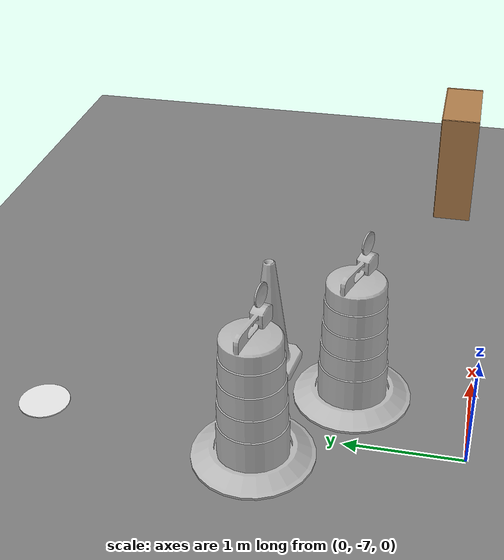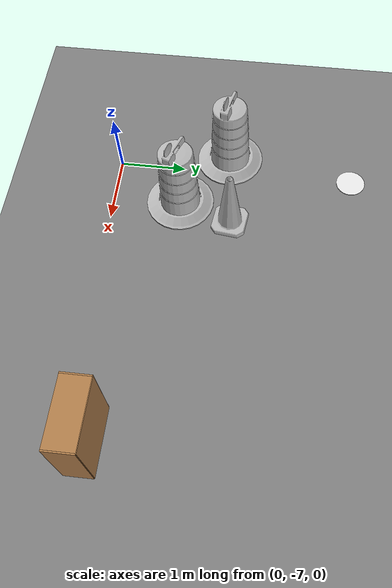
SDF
<sdf version="1.7">
 <world name="default">
  <model name="Construction Barrel">
   <link name="link">
    <inertial>
     <pose>0 0 0.4 0 -0 0</pose>
     <mass>500</mass>
     <inertia><ixx>51.2096</ixx><iyy>51.2096</iyy><izz>25</izz><ixy>0</ixy><ixz>0</ixz><iyz>0</iyz></inertia>
    </inertial>
    <collision name="collision">
     <pose>0 0 0.32 0 0 0</pose>
     <geometry><cylinder><radius>0.16</radius><length>0.64</length></cylinder></geometry>
    </collision>
    <visual name="visual">
     <geometry><mesh><uri>model://construction_barrel/meshes/construction_barrel.dae</uri></mesh></geometry>
    </visual>
   </link>
   <pose>-0.274787 -5.3139 0.00999 1e-06 -0 -0.237848</pose>
  </model>
  <model name="Construction Barrel_clone">
   <link name="link">
    <inertial>
     <pose>0 0 0.4 0 -0 0</pose>
     <mass>500</mass>
     <inertia><ixx>51.2096</ixx><iyy>51.2096</iyy><izz>25</izz><ixy>0</ixy><ixz>0</ixz><iyz>0</iyz></inertia>
    </inertial>
    <collision name="collision">
     <pose>0 0 0.32 0 0 0</pose>
     <geometry><cylinder><radius>0.16</radius><length>0.64</length></cylinder></geometry>
    </collision>
    <visual name="visual">
     <geometry><mesh><uri>model://construction_barrel/meshes/construction_barrel.dae</uri></mesh></geometry>
    </visual>
   </link>
   <pose>0.623823 -5.9827 0.009999 3e-06 -8e-06 -0.35048</pose>
  </model>
  <model name="bookshelf">
   <static>1</static>
   <link name="link">
    <inertial><mass>1</mass></inertial>
    <collision name="back">
     <pose>0 0.005 0.6 0 -0 0</pose>
     <geometry><box><size>0.9 0.01 1.2</size></box></geometry>
    </collision>
    <visual name="visual1">
     <pose>0 0.005 0.6 0 -0 0</pose>
     <geometry><box><size>0.9 0.01 1.2</size></box></geometry>
     <material>
      <script><uri>file://media/materials/scripts/gazebo.material</uri><name>Gazebo/Wood</name></script>
      <ambient>0.55 0.34 0.16 1</ambient>
      <diffuse>0.55 0.34 0.16 1</diffuse>
      <specular>0.08 0.08 0.08 1</specular>
      <emissive>0 0 0 1</emissive>
     </material>
    </visual>
    <collision name="left_side">
     <pose>0.45 -0.195 0.6 0 -0 0</pose>
     <geometry><box><size>0.02 0.4 1.2</size></box></geometry>
    </collision>
    <visual name="visual2">
     <pose>0.45 -0.195 0.6 0 -0 0</pose>
     <geometry><box><size>0.02 0.4 1.2</size></box></geometry>
     <material>
      <script><uri>file://media/materials/scripts/gazebo.material</uri><name>Gazebo/Wood</name></script>
      <ambient>0.55 0.34 0.16 1</ambient>
      <diffuse>0.55 0.34 0.16 1</diffuse>
      <specular>0.08 0.08 0.08 1</specular>
      <emissive>0 0 0 1</emissive>
     </material>
    </visual>
    <collision name="right_side">
     <pose>-0.45 -0.195 0.6 0 -0 0</pose>
     <geometry><box><size>0.02 0.4 1.2</size></box></geometry>
    </collision>
    <visual name="visual3">
     <pose>-0.45 -0.195 0.6 0 -0 0</pose>
     <geometry><box><size>0.02 0.4 1.2</size></box></geometry>
     <material>
      <script><uri>file://media/materials/scripts/gazebo.material</uri><name>Gazebo/Wood</name></script>
      <ambient>0.55 0.34 0.16 1</ambient>
      <diffuse>0.55 0.34 0.16 1</diffuse>
      <specular>0.08 0.08 0.08 1</specular>
      <emissive>0 0 0 1</emissive>
     </material>
    </visual>
    <collision name="bottom">
     <pose>0 -0.195 0.03 0 -0 0</pose>
     <geometry><box><size>0.88 0.4 0.06</size></box></geometry>
    </collision>
    <visual name="visual4">
     <pose>0 -0.195 0.03 0 -0 0</pose>
     <geometry><box><size>0.88 0.4 0.06</size></box></geometry>
     <material>
      <script><uri>file://media/materials/scripts/gazebo.material</uri><name>Gazebo/Wood</name></script>
      <ambient>0.55 0.34 0.16 1</ambient>
      <diffuse>0.55 0.34 0.16 1</diffuse>
      <specular>0.08 0.08 0.08 1</specular>
      <emissive>0 0 0 1</emissive>
     </material>
    </visual>
    <collision name="top">
     <pose>0 -0.195 1.19 0 -0 0</pose>
     <geometry><box><size>0.88 0.4 0.02</size></box></geometry>
    </collision>
    <visual name="visual5">
     <pose>0 -0.195 1.19 0 -0 0</pose>
     <geometry><box><size>0.88 0.4 0.02</size></box></geometry>
     <material>
      <script><uri>file://media/materials/scripts/gazebo.material</uri><name>Gazebo/Wood</name></script>
      <ambient>0.55 0.34 0.16 1</ambient>
      <diffuse>0.55 0.34 0.16 1</diffuse>
      <specular>0.08 0.08 0.08 1</specular>
      <emissive>0 0 0 1</emissive>
     </material>
    </visual>
    <collision name="low_shelf">
     <pose>0 -0.195 0.43 0 -0 0</pose>
     <geometry><box><size>0.88 0.4 0.02</size></box></geometry>
    </collision>
    <visual name="visual6">
     <pose>0 -0.195 0.43 0 -0 0</pose>
     <geometry><box><size>0.88 0.4 0.02</size></box></geometry>
     <material>
      <script><uri>file://media/materials/scripts/gazebo.material</uri><name>Gazebo/Wood</name></script>
      <ambient>0.55 0.34 0.16 1</ambient>
      <diffuse>0.55 0.34 0.16 1</diffuse>
      <specular>0.08 0.08 0.08 1</specular>
      <emissive>0 0 0 1</emissive>
     </material>
    </visual>
    <collision name="high_shelf">
     <pose>0 -0.195 0.8 0 -0 0</pose>
     <geometry><box><size>0.88 0.4 0.02</size></box></geometry>
    </collision>
    <visual name="visual7">
     <pose>0 -0.195 0.8 0 -0 0</pose>
     <geometry><box><size>0.88 0.4 0.02</size></box></geometry>
     <material>
      <script><uri>file://media/materials/scripts/gazebo.material</uri><name>Gazebo/Wood</name></script>
      <ambient>0.55 0.34 0.16 1</ambient>
      <diffuse>0.55 0.34 0.16 1</diffuse>
      <specular>0.08 0.08 0.08 1</specular>
      <emissive>0 0 0 1</emissive>
     </material>
    </visual>
   </link>
   <pose>4.37057 -6.44632 0 0 -0 0</pose>
  </model>
  <model name="asphalt_plane">
   <static>1</static>
   <link name="link">
    <collision name="collision"><geometry><box><size>52 48 0.04</size></box></geometry></collision>
    <visual name="visual">
     <cast_shadows>0</cast_shadows>
     <geometry><box><size>52 48 0.04</size></box></geometry>
     <material>
      <ambient>0.5 0.5 0.5 1</ambient>
      <diffuse>0.5 0.5 0.5 1</diffuse>
      <specular>0.2 0.2 0.2 1</specular>
      <emissive>0 0 0 1</emissive>
      <pbr>
       <metal>
        <albedo_map>model://asphalt_plane/materials/textures/tarmac.png</albedo_map>
        <roughness>0.85</roughness>
        <metalness>0</metalness>
       </metal>
      </pbr>
     </material>
    </visual>
   </link>
   <pose>1.0 4.8 -0.02 0 -0 0</pose>
  </model>
  <model name="Construction Cone_clone">
   <link name="link">
    <collision name="collision">
     <pose>0 0 0.17 0 0 0</pose>
     <geometry><cylinder><radius>0.11</radius><length>0.34</length></cylinder></geometry>
    </collision>
    <visual name="visual">
     <geometry>
      <mesh><scale>10 10 10</scale><uri>model://construction_cone/meshes/construction_cone.dae</uri></mesh>
     </geometry>
    </visual>
    <inertial>
     <inertia><ixx>1</ixx><ixy>0</ixy><ixz>0</ixz><iyy>1</iyy><iyz>0</iyz><izz>1</izz></inertia>
     <mass>1</mass>
    </inertial>
   </link>
   <pose>0.909638 -5.19132 0.01 -0 -0 -1.69187</pose>
  </model>
  <model name="impostor_start_marker">
   <static>1</static>
   <link name="link">
    <visual name="disc">
     <geometry><cylinder><radius>0.22</radius><length>0.01</length></cylinder></geometry>
     <material>
      <script><uri>file://media/materials/scripts/gazebo.material</uri><name>Gazebo/White</name></script>
      <ambient>0.92 0.55 0.55 1</ambient>
      <diffuse>0.92 0.55 0.55 1</diffuse>
      <specular>0.08 0.08 0.08 1</specular>
      <emissive>0 0 0 1</emissive>
     </material>
    </visual>
   </link>
   <pose>0.0 -3.4 0.012 0 0 0</pose>
  </model>
 </world>
</sdf>
